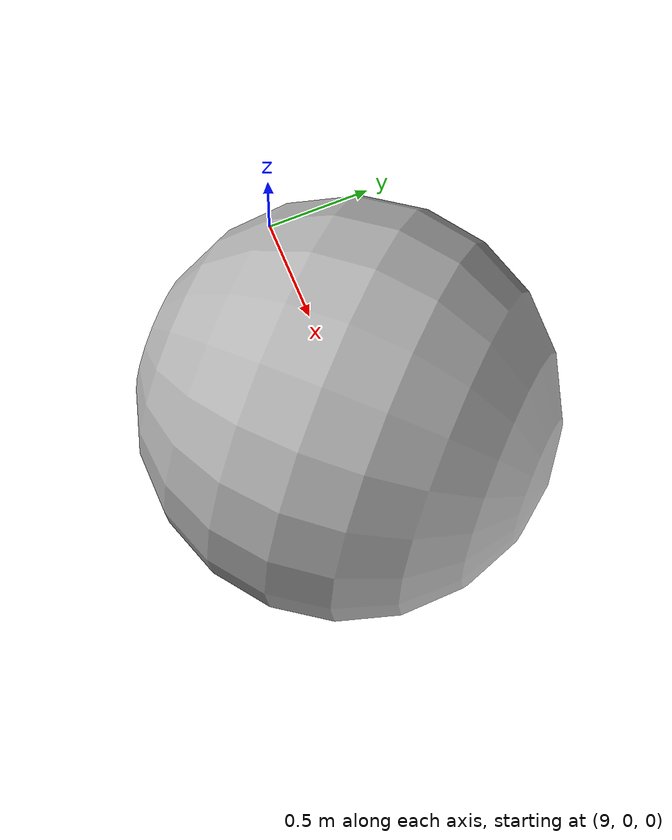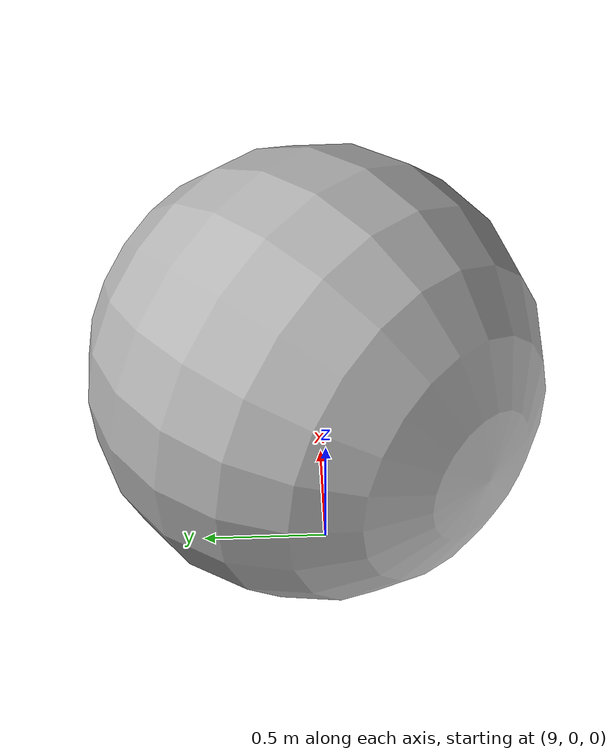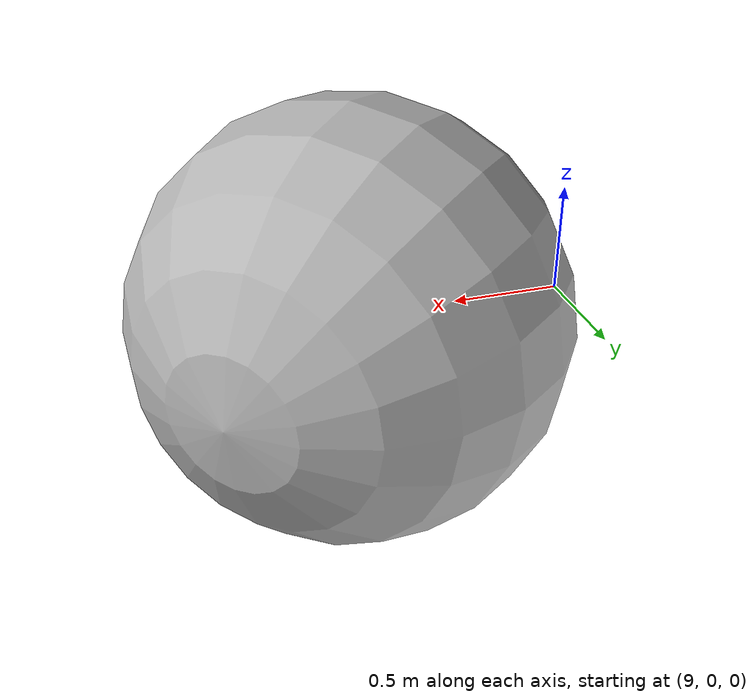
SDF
<?xml version='1.0'?>
<sdf version='1.7'>
  <world name='default'>
    <model name='ParentModel'>
      <frame name='M1::__model__' attached_to='M1::L1'>
        <pose relative_to='__model__'>10 0 0 0 -0 1.5708</pose>
      </frame>
      <frame name='M1::F1' attached_to='M1::__model__'>
        <pose>0 0 0 1.5708 -0 0</pose>
      </frame>
      <frame name='M1::F2' attached_to='M1::__model__'>
        <pose relative_to='M1::F1'>0 0 0 0 0.785398 0</pose>
      </frame>
      <link name='M1::L1'>
        <pose relative_to='M1::F1'>0 0 0 0 -0 0</pose>
        <visual name='V1'>
          <pose relative_to='M1::F2'>0 0 0 0 -0 0</pose>
          <geometry>
            <sphere>
              <radius>1</radius>
            </sphere>
          </geometry>
        </visual>
        <collision name='C1'>
          <pose relative_to='M1::__model__'>0 0 0 0 -0 0</pose>
          <geometry>
            <sphere>
              <radius>1</radius>
            </sphere>
          </geometry>
        </collision>
      </link>
      <link name='M1::L2'>
        <pose relative_to='M1::F1'>1 0 0 0 -0 0</pose>
      </link>
      <link name='M1::L3'>
        <pose relative_to='M1::L2'>0 1 0 0 -0 0</pose>
      </link>
      <link name='M1::L4'>
        <pose relative_to='M1::__model__'>0 0 1 0 -0 0</pose>
      </link>
      <joint name='M1::J1' type='universal'>
        <pose relative_to='M1::L1'>0 0 0 0 -0 0</pose>
        <parent>M1::L1</parent>
        <child>M1::L2</child>
        <axis>
          <xyz expressed_in='M1::F2'>0 0 1</xyz>
        </axis>
        <axis2>
          <xyz expressed_in='M1::F2'>1 0 0</xyz>
        </axis2>
      </joint>
      <joint name='M1::J2' type='revolute'>
        <pose>0 0 1 0 -0 0</pose>
        <parent>M1::L2</parent>
        <child>M1::L3</child>
        <axis>
          <xyz expressed_in='M1::__model__'>0 0 1</xyz>
        </axis>
      </joint>
      <joint name='M1::J3' type='fixed'>
        <pose relative_to='M1::__model__'>1 0 1 0 -0 0</pose>
        <parent>M1::L3</parent>
        <child>M1::L4</child>
      </joint>
      <model name='M1::M2'>
        <pose relative_to='M1::F1'>1 0 0 0 -0 0</pose>
        <link name='L5'>
          <pose>1 0 0 0 -0 0</pose>
        </link>
      </model>
    </model>
  </world>
</sdf>
